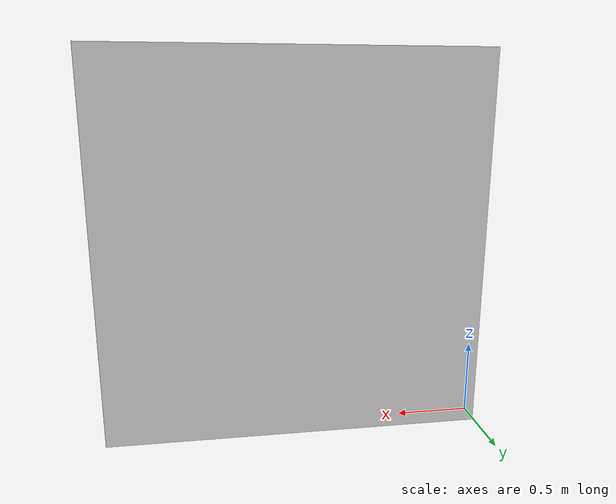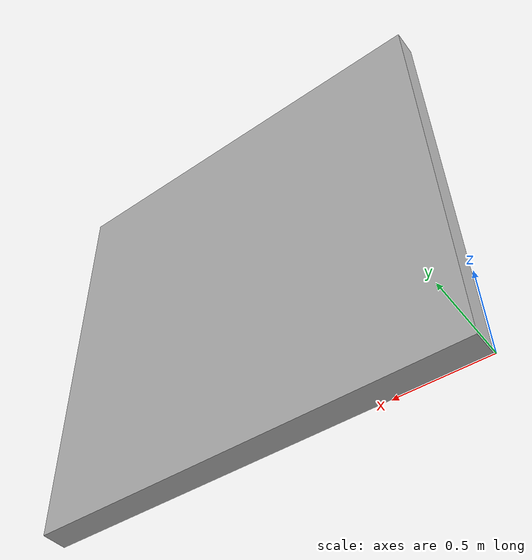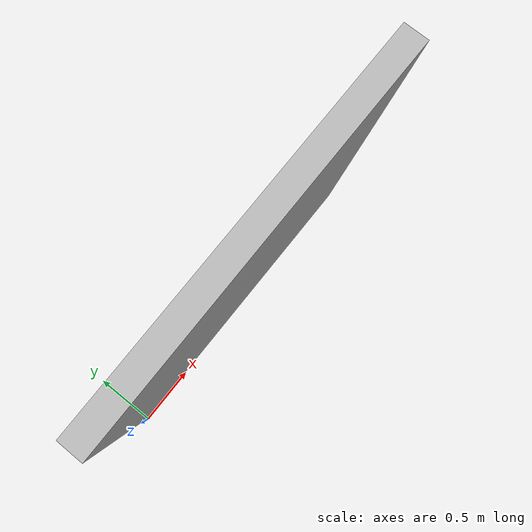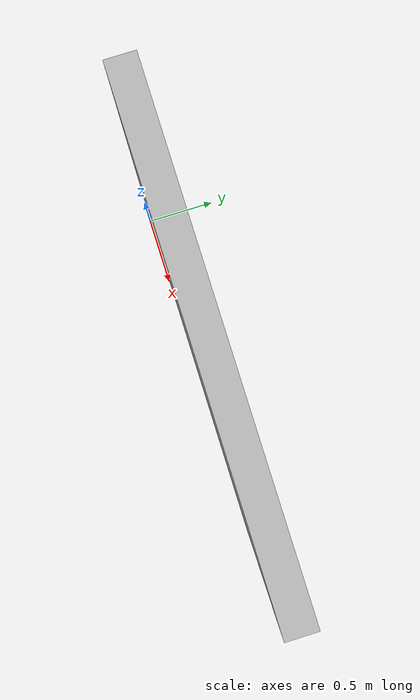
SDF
<?xml version='1.0'?>
<sdf version='1.6'>
  <model name='wall0'>
    <pose frame=''>1.25804 0.078696 0 0 -0 0</pose>
    <link name='Wall_0'>
      <collision name='Wall_0_Collision'>
        <geometry>
          <box>
            <size>2.5 0.15 2.5</size>
          </box>
        </geometry>
        <pose frame=''>0 0 1.25 0 -0 0</pose>
      </collision>
      <visual name='Wall_0_Visual'>
        <pose frame=''>0 0 1.25 0 -0 0</pose>
        <geometry>
          <box>
            <size>2.5 0.15 2.5</size>
          </box>
        </geometry>
        <material>
          <script>
            <uri>model://wall0/materials/scripts/texture.material</uri>
            <name>wall-texture</name>
          </script>
        </material>
      </visual>
      <pose frame=''>0 0 0 0 -0 0</pose>
    </link>
    <static>1</static>
  </model>
</sdf>
